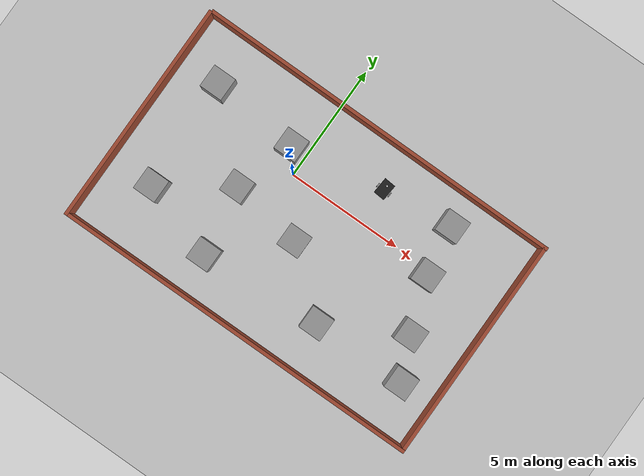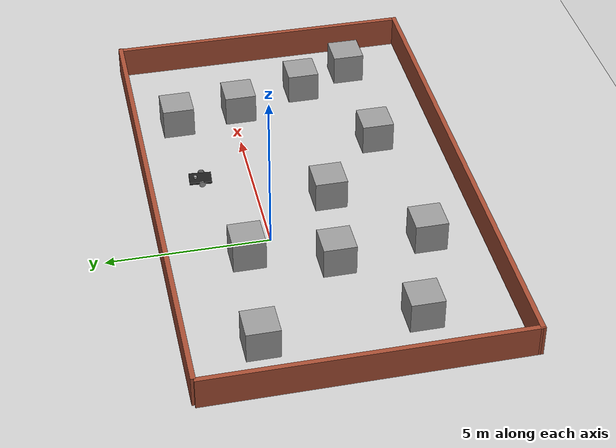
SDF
<sdf version="1.6">
 <world name="default">
  <light name="sun" type="directional">
   <pose>0 0 10 0 -0 0</pose>
   <diffuse>0.8 0.8 0.8 1</diffuse>
   <specular>0.2 0.2 0.2 1</specular>
   <attenuation>
    <range>1000</range>
    <constant>0.9</constant>
    <linear>0.01</linear>
    <quadratic>0.001</quadratic>
   </attenuation>
   <direction>-0.5 0.1 -0.9</direction>
   <spot><inner_angle>0</inner_angle><outer_angle>0</outer_angle><falloff>0</falloff></spot>
  </light>
  <model name="ground_plane">
   <static>1</static>
   <link name="link">
    <collision name="collision">
     <geometry><plane><normal>0 0 1</normal><size>100 100</size></plane></geometry>
     <surface>
      <contact><collide_bitmask>65535</collide_bitmask></contact>
      <friction><ode><mu>100</mu><mu2>50</mu2></ode></friction>
     </surface>
    </collision>
    <visual name="visual">
     <cast_shadows>0</cast_shadows>
     <geometry><plane><normal>0 0 1</normal><size>100 100</size></plane></geometry>
     <material>
      <script><uri>file://media/materials/scripts/gazebo.material</uri><name>Gazebo/Grey</name></script>
     </material>
    </visual>
   </link>
  </model>
  <gravity>0 0 -9.8</gravity>
  <magnetic_field>6e-06 2.3e-05 -4.2e-05</magnetic_field>
  <atmosphere type="adiabatic"/>
  <physics name="default_physics" default="0" type="ode">
   <max_step_size>0.001</max_step_size>
   <real_time_factor>1</real_time_factor>
   <real_time_update_rate>1000</real_time_update_rate>
  </physics>
  <scene><ambient>0.4 0.4 0.4 1</ambient><background>0.7 0.7 0.7 1</background><shadows>1</shadows></scene>
  <audio><device>default</device></audio>
  <spherical_coordinates>
   <surface_model>EARTH_WGS84</surface_model>
   <latitude_deg>0</latitude_deg>
   <longitude_deg>0</longitude_deg>
   <elevation>0</elevation>
   <heading_deg>0</heading_deg>
  </spherical_coordinates>
  <model name="mac">
   <pose>1.71534 -1.52025 0 0 -0 0</pose>
   <link name="Wall_0">
    <collision name="Wall_0_Collision">
     <geometry><box><size>9.75 0.15 1</size></box></geometry>
     <pose>0 0 0.5 0 -0 0</pose>
    </collision>
    <visual name="Wall_0_Visual">
     <pose>0 0 0.5 0 -0 0</pose>
     <geometry><box><size>9.75 0.15 1</size></box></geometry>
     <material>
      <script><uri>file://media/materials/scripts/gazebo.material</uri><name>Gazebo/Bricks</name></script>
      <ambient>1 1 1 1</ambient>
     </material>
     <meta><layer>0</layer></meta>
    </visual>
    <pose>-7.98034 -0.042753 0 0 -0 -1.5708</pose>
   </link>
   <link name="Wall_1">
    <collision name="Wall_1_Collision">
     <geometry><box><size>16.084 0.15 1</size></box></geometry>
     <pose>0 0 0.5 0 -0 0</pose>
    </collision>
    <visual name="Wall_1_Visual">
     <pose>0 0 0.5 0 -0 0</pose>
     <geometry><box><size>16.084 0.15 1</size></box></geometry>
     <material>
      <script><uri>file://media/materials/scripts/gazebo.material</uri><name>Gazebo/Bricks</name></script>
      <ambient>1 1 1 1</ambient>
     </material>
     <meta><layer>0</layer></meta>
    </visual>
    <pose>-0.013353 -4.82695 0 0 -0 0.001983</pose>
   </link>
   <link name="Wall_2">
    <collision name="Wall_2_Collision">
     <geometry><box><size>9.75 0.15 1</size></box></geometry>
     <pose>0 0 0.5 0 -0 0</pose>
    </collision>
    <visual name="Wall_2_Visual">
     <pose>0 0 0.5 0 -0 0</pose>
     <geometry><box><size>9.75 0.15 1</size></box></geometry>
     <material>
      <script><uri>file://media/materials/scripts/gazebo.material</uri><name>Gazebo/Bricks</name></script>
      <ambient>1 1 1 1</ambient>
     </material>
     <meta><layer>0</layer></meta>
    </visual>
    <pose>7.95363 -0.011154 0 0 -0 1.5708</pose>
   </link>
   <link name="Wall_3">
    <collision name="Wall_3_Collision">
     <geometry><box><size>16.0043 0.15 1</size></box></geometry>
     <pose>0 0 0.5 0 -0 0</pose>
    </collision>
    <visual name="Wall_3_Visual">
     <pose>0 0 0.5 0 -0 0</pose>
     <geometry><box><size>16.0043 0.15 1</size></box></geometry>
     <material>
      <script><uri>file://media/materials/scripts/gazebo.material</uri><name>Gazebo/Bricks</name></script>
      <ambient>1 1 1 1</ambient>
     </material>
     <meta><layer>0</layer></meta>
    </visual>
    <pose>0.053147 4.81575 0 0 -0 3.1382</pose>
   </link>
   <static>1</static>
  </model>
  <model name="robot">
   <link name="link_chassis">
    <inertial>
     <pose>0.066667 0 0.077778 0 -0 0</pose>
     <mass>9</mass>
     <inertia>
      <ixx>0.0465556</ixx>
      <ixy>0</ixy>
      <ixz>0.0166667</ixz>
      <iyy>0.163222</iyy>
      <iyz>0</iyz>
      <izz>0.157458</izz>
     </inertia>
    </inertial>
    <collision name="link_chassis_fixed_joint_lump__collision_chassis_collision">
     <geometry><box><size>0.7 0.5 0.07</size></box></geometry>
    </collision>
    <collision name="link_chassis_fixed_joint_lump__caster_front_collision_collision_1">
     <pose>0.35 0 -0.05 0 -0 0</pose>
     <geometry><sphere><radius>0.05</radius></sphere></geometry>
    </collision>
    <collision name="link_chassis_fixed_joint_lump__sensor_laser_collision_2">
     <pose>0.15 0 0.05 0 -0 0</pose>
     <geometry><cylinder><length>0.1</length><radius>0.05</radius></cylinder></geometry>
    </collision>
    <visual name="link_chassis_visual">
     <geometry><box><size>0.7 0.5 0.07</size></box></geometry>
     <material>
      <script><name>Gazebo/Black</name><uri>file://media/materials/scripts/gazebo.material</uri></script>
     </material>
    </visual>
    <visual name="link_chassis_fixed_joint_lump__caster_front_visual_visual_1">
     <pose>0.2 0 -0.05 0 -0 0</pose>
     <geometry><sphere><radius>0.05</radius></sphere></geometry>
    </visual>
    <visual name="link_chassis_fixed_joint_lump__sensor_laser_visual_2">
     <pose>0.15 0 0.05 0 -0 0</pose>
     <geometry><cylinder><length>0.1</length><radius>0.05</radius></cylinder></geometry>
     <material><script><uri>__default__</uri><name>__default__</name></script></material>
    </visual>
    <sensor name="head_hokuyo_sensor" type="ray">
     <visualize>1</visualize>
     <always_on>1</always_on>
     <update_rate>30</update_rate>
     <ray>
      <scan>
       <horizontal>
        <samples>10</samples>
        <resolution>1</resolution>
        <min_angle>-1.0472</min_angle>
        <max_angle>1.0472</max_angle>
       </horizontal>
       <vertical><samples>1</samples><min_angle>0</min_angle><max_angle>0</max_angle></vertical>
      </scan>
      <range><min>0.1</min><max>10</max><resolution>0.01</resolution></range>
      <noise><type>gaussian</type><mean>0</mean><stddev>0.01</stddev></noise>
     </ray>
     <plugin name="gazebo_ros_head_hokuyo_controller" filename="libgazebo_ros_laser.so">
      <topicName>/robot/laser/scan</topicName>
      <frameName>sensor_laser</frameName>
      <robotNamespace>/</robotNamespace>
     </plugin>
     <pose>0.15 0 0.05 0 -0 0</pose>
    </sensor>
   </link>
   <link name="link_left_wheel">
    <pose>-0.05 -0.3 0 0 -0 0</pose>
    <inertial>
     <pose>0 0 0 -0 1.5707 1.5707</pose>
     <mass>0.2</mass>
     <inertia>
      <ixx>0.000526667</ixx>
      <ixy>0</ixy>
      <ixz>0</ixz>
      <iyy>0.000526667</iyy>
      <iyz>0</iyz>
      <izz>0.001</izz>
     </inertia>
    </inertial>
    <collision name="link_left_wheel_fixed_joint_lump__link_right_wheel_collision_collision">
     <pose>0 0 0 3.14159 1.57079 -1.57089</pose>
     <geometry><cylinder><length>0.04</length><radius>0.1</radius></cylinder></geometry>
    </collision>
    <visual name="link_left_wheel_visual_visual">
     <pose>0 0 0 3.14159 1.57079 -1.57089</pose>
     <geometry><cylinder><length>0.04</length><radius>0.1</radius></cylinder></geometry>
     <material>
      <script><name>Gazebo/Grey</name><uri>file://media/materials/scripts/gazebo.material</uri></script>
     </material>
    </visual>
   </link>
   <joint name="joint_left_wheel" type="revolute">
    <child>link_left_wheel</child>
    <parent>link_chassis</parent>
    <axis>
     <xyz>0 1 0</xyz>
     <limit><lower>-1e+16</lower><upper>1e+16</upper></limit>
     <dynamics><spring_reference>0</spring_reference><spring_stiffness>0</spring_stiffness></dynamics>
     <use_parent_model_frame>1</use_parent_model_frame>
    </axis>
   </joint>
   <link name="link_right_wheel">
    <pose>-0.05 0.3 0 0 -0 0</pose>
    <inertial>
     <pose>0 0 0 -0 1.5707 1.5707</pose>
     <mass>0.2</mass>
     <inertia>
      <ixx>0.000526667</ixx>
      <ixy>0</ixy>
      <ixz>0</ixz>
      <iyy>0.000526667</iyy>
      <iyz>0</iyz>
      <izz>0.001</izz>
     </inertia>
    </inertial>
    <collision name="link_right_wheel_collision_collision">
     <pose>0 0 0 3.14159 1.57079 -1.57089</pose>
     <geometry><cylinder><length>0.04</length><radius>0.1</radius></cylinder></geometry>
    </collision>
    <visual name="link_right_wheel_visual_visual">
     <pose>0 0 0 3.14159 1.57079 -1.57089</pose>
     <geometry><cylinder><length>0.04</length><radius>0.1</radius></cylinder></geometry>
     <material>
      <script><name>Gazebo/Grey</name><uri>file://media/materials/scripts/gazebo.material</uri></script>
     </material>
    </visual>
   </link>
   <joint name="joint_right_wheel" type="revolute">
    <child>link_right_wheel</child>
    <parent>link_chassis</parent>
    <axis>
     <xyz>0 1 0</xyz>
     <limit><lower>-1e+16</lower><upper>1e+16</upper></limit>
     <dynamics><spring_reference>0</spring_reference><spring_stiffness>0</spring_stiffness></dynamics>
     <use_parent_model_frame>1</use_parent_model_frame>
    </axis>
   </joint>
   <static>0</static>
   <plugin name="differential_drive_controller" filename="libgazebo_ros_diff_drive.so">
    <alwaysOn>true</alwaysOn>
    <legacyMode>false</legacyMode>
    <updateRate>20</updateRate>
    <leftJoint>joint_left_wheel</leftJoint>
    <rightJoint>joint_right_wheel</rightJoint>
    <wheelSeparation>0.45</wheelSeparation>
    <wheelDiameter>0.2</wheelDiameter>
    <torque>0.1</torque>
    <commandTopic>cmd_vel</commandTopic>
    <odometryTopic>odom</odometryTopic>
    <odometryFrame>odom</odometryFrame>
    <robotBaseFrame>link_chassis</robotBaseFrame>
    <robotNamespace>/</robotNamespace>
   </plugin>
   <pose>3.28187 1.61271 0.100009 2.1e-05 4.5e-05 1.4931</pose>
  </model>
  <model name="unit_box_0_0">
   <pose>-4.23495 -3.55507 0.5 0 -0 0</pose>
   <link name="link">
    <inertial>
     <mass>1</mass>
     <inertia>
      <ixx>0.166667</ixx>
      <ixy>0</ixy>
      <ixz>0</ixz>
      <iyy>0.166667</iyy>
      <iyz>0</iyz>
      <izz>0.166667</izz>
     </inertia>
    </inertial>
    <collision name="collision"><geometry><box><size>1 1 1</size></box></geometry></collision>
    <visual name="visual">
     <geometry><box><size>1 1 1</size></box></geometry>
     <material>
      <script><name>Gazebo/Grey</name><uri>file://media/materials/scripts/gazebo.material</uri></script>
     </material>
    </visual>
   </link>
  </model>
  <model name="unit_box_0_1">
   <pose>-1.47286 -1.68181 0.5 0 -0 0</pose>
   <link name="link">
    <inertial>
     <mass>1</mass>
     <inertia>
      <ixx>0.166667</ixx>
      <ixy>0</ixy>
      <ixz>0</ixz>
      <iyy>0.166667</iyy>
      <iyz>0</iyz>
      <izz>0.166667</izz>
     </inertia>
    </inertial>
    <collision name="collision"><geometry><box><size>1 1 1</size></box></geometry></collision>
    <visual name="visual">
     <geometry><box><size>1 1 1</size></box></geometry>
     <material>
      <script><name>Gazebo/Grey</name><uri>file://media/materials/scripts/gazebo.material</uri></script>
     </material>
    </visual>
   </link>
  </model>
  <model name="unit_box_0_2">
   <pose>-1.00563 -4.57589 0.5 0 -0 0</pose>
   <link name="link">
    <inertial>
     <mass>1</mass>
     <inertia>
      <ixx>0.166667</ixx>
      <ixy>0</ixy>
      <ixz>0</ixz>
      <iyy>0.166667</iyy>
      <iyz>0</iyz>
      <izz>0.166667</izz>
     </inertia>
    </inertial>
    <collision name="collision"><geometry><box><size>1 1 1</size></box></geometry></collision>
    <visual name="visual">
     <geometry><box><size>1 1 1</size></box></geometry>
     <material>
      <script><name>Gazebo/Grey</name><uri>file://media/materials/scripts/gazebo.material</uri></script>
     </material>
    </visual>
   </link>
  </model>
  <model name="unit_box_0_3">
   <pose>-4.4248 1.171 0.5 0 -0 0</pose>
   <link name="link">
    <inertial>
     <mass>1</mass>
     <inertia>
      <ixx>0.166667</ixx>
      <ixy>0</ixy>
      <ixz>0</ixz>
      <iyy>0.166667</iyy>
      <iyz>0</iyz>
      <izz>0.166667</izz>
     </inertia>
    </inertial>
    <collision name="collision"><geometry><box><size>1 1 1</size></box></geometry></collision>
    <visual name="visual">
     <geometry><box><size>1 1 1</size></box></geometry>
     <material>
      <script><name>Gazebo/Grey</name><uri>file://media/materials/scripts/gazebo.material</uri></script>
     </material>
    </visual>
   </link>
  </model>
  <model name="unit_box_0_4">
   <pose>-0.690947 0.85942 0.5 0 -0 0</pose>
   <link name="link">
    <inertial>
     <mass>1</mass>
     <inertia>
      <ixx>0.166667</ixx>
      <ixy>0</ixy>
      <ixz>0</ixz>
      <iyy>0.166667</iyy>
      <iyz>0</iyz>
      <izz>0.166667</izz>
     </inertia>
    </inertial>
    <collision name="collision"><geometry><box><size>1 1 1</size></box></geometry></collision>
    <visual name="visual">
     <geometry><box><size>1 1 1</size></box></geometry>
     <material>
      <script><name>Gazebo/Grey</name><uri>file://media/materials/scripts/gazebo.material</uri></script>
     </material>
    </visual>
   </link>
  </model>
  <model name="unit_box_0_5">
   <pose>6.57074 -0.214471 0.5 0 -0 0</pose>
   <link name="link">
    <inertial>
     <mass>1</mass>
     <inertia>
      <ixx>0.166667</ixx>
      <ixy>0</ixy>
      <ixz>0</ixz>
      <iyy>0.166667</iyy>
      <iyz>0</iyz>
      <izz>0.166667</izz>
     </inertia>
    </inertial>
    <collision name="collision"><geometry><box><size>1 1 1</size></box></geometry></collision>
    <visual name="visual">
     <geometry><box><size>1 1 1</size></box></geometry>
     <material>
      <script><name>Gazebo/Grey</name><uri>file://media/materials/scripts/gazebo.material</uri></script>
     </material>
    </visual>
   </link>
  </model>
  <model name="unit_box_0_6">
   <pose>4.11295 -4.23754 0.5 0 -0 0</pose>
   <link name="link">
    <inertial>
     <mass>1</mass>
     <inertia>
      <ixx>0.166667</ixx>
      <ixy>0</ixy>
      <ixz>0</ixz>
      <iyy>0.166667</iyy>
      <iyz>0</iyz>
      <izz>0.166667</izz>
     </inertia>
    </inertial>
    <collision name="collision"><geometry><box><size>1 1 1</size></box></geometry></collision>
    <visual name="visual">
     <geometry><box><size>1 1 1</size></box></geometry>
     <material>
      <script><name>Gazebo/Grey</name><uri>file://media/materials/scripts/gazebo.material</uri></script>
     </material>
    </visual>
   </link>
  </model>
  <model name="unit_box_0_9">
   <pose>1.56244 -2.12098 0.5 0 -0 0</pose>
   <link name="link">
    <inertial>
     <mass>1</mass>
     <inertia>
      <ixx>0.166667</ixx>
      <ixy>0</ixy>
      <ixz>0</ixz>
      <iyy>0.166667</iyy>
      <iyz>0</iyz>
      <izz>0.166667</izz>
     </inertia>
    </inertial>
    <collision name="collision"><geometry><box><size>1 1 1</size></box></geometry></collision>
    <visual name="visual">
     <geometry><box><size>1 1 1</size></box></geometry>
     <material>
      <script><name>Gazebo/Grey</name><uri>file://media/materials/scripts/gazebo.material</uri></script>
     </material>
    </visual>
   </link>
  </model>
  <model name="unit_box_0_11">
   <pose>7.36303 -2.48644 0.5 0 -0 0</pose>
   <link name="link">
    <inertial>
     <mass>1</mass>
     <inertia>
      <ixx>0.166667</ixx>
      <ixy>0</ixy>
      <ixz>0</ixz>
      <iyy>0.166667</iyy>
      <iyz>0</iyz>
      <izz>0.166667</izz>
     </inertia>
    </inertial>
    <collision name="collision"><geometry><box><size>1 1 1</size></box></geometry></collision>
    <visual name="visual">
     <geometry><box><size>1 1 1</size></box></geometry>
     <material>
      <script><name>Gazebo/Grey</name><uri>file://media/materials/scripts/gazebo.material</uri></script>
     </material>
    </visual>
   </link>
  </model>
  <model name="unit_box_0_13">
   <pose>8.13262 -4.2174 0.5 0 -0 0</pose>
   <link name="link">
    <inertial>
     <mass>1</mass>
     <inertia>
      <ixx>0.166667</ixx>
      <ixy>0</ixy>
      <ixz>0</ixz>
      <iyy>0.166667</iyy>
      <iyz>0</iyz>
      <izz>0.166667</izz>
     </inertia>
    </inertial>
    <collision name="collision"><geometry><box><size>1 1 1</size></box></geometry></collision>
    <visual name="visual">
     <geometry><box><size>1 1 1</size></box></geometry>
     <material>
      <script><name>Gazebo/Grey</name><uri>file://media/materials/scripts/gazebo.material</uri></script>
     </material>
    </visual>
   </link>
  </model>
  <model name="unit_box_0_14">
   <pose>6.25327 1.88582 0.5 0 -0 0</pose>
   <link name="link">
    <inertial>
     <mass>1</mass>
     <inertia>
      <ixx>0.166667</ixx>
      <ixy>0</ixy>
      <ixz>0</ixz>
      <iyy>0.166667</iyy>
      <iyz>0</iyz>
      <izz>0.166667</izz>
     </inertia>
    </inertial>
    <collision name="collision"><geometry><box><size>1 1 1</size></box></geometry></collision>
    <visual name="visual">
     <geometry><box><size>1 1 1</size></box></geometry>
     <material>
      <script><name>Gazebo/Grey</name><uri>file://media/materials/scripts/gazebo.material</uri></script>
     </material>
    </visual>
   </link>
  </model>
 </world>
</sdf>
